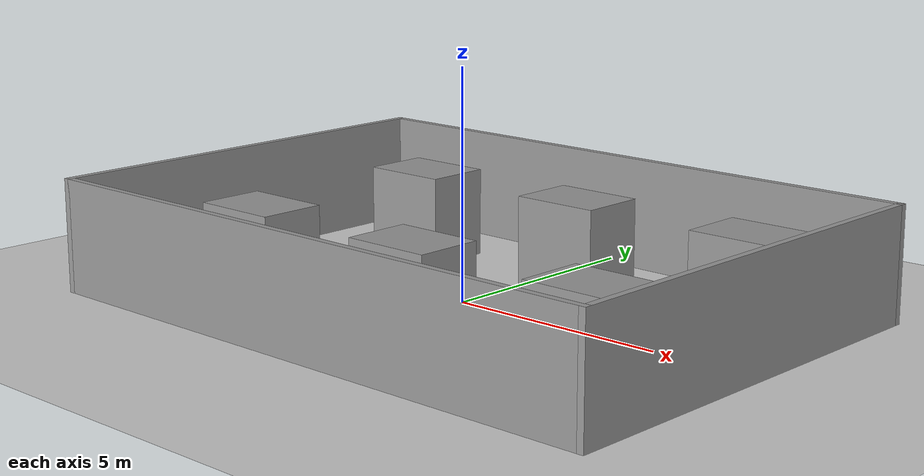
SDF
<sdf version="1.7">
 <world name="default">
  <light name="sun" type="directional">
   <pose>0 0 10 0 -0 0</pose>
   <diffuse>0.8 0.8 0.8 1</diffuse>
   <specular>0.2 0.2 0.2 1</specular>
   <attenuation>
    <range>1000</range>
    <constant>0.9</constant>
    <linear>0.01</linear>
    <quadratic>0.001</quadratic>
   </attenuation>
   <direction>-0.5 0.1 -0.9</direction>
   <spot><inner_angle>0</inner_angle><outer_angle>0</outer_angle><falloff>0</falloff></spot>
  </light>
  <model name="ground_plane">
   <static>1</static>
   <link name="link">
    <collision name="collision">
     <geometry><plane><normal>0 0 1</normal><size>100 100</size></plane></geometry>
     <surface>
      <contact><collide_bitmask>65535</collide_bitmask></contact>
      <friction><ode><mu>100</mu><mu2>50</mu2></ode></friction>
     </surface>
    </collision>
    <visual name="visual">
     <cast_shadows>0</cast_shadows>
     <geometry><plane><normal>0 0 1</normal><size>100 100</size></plane></geometry>
     <material>
      <script><uri>file://media/materials/scripts/gazebo.material</uri><name>Gazebo/Grey</name></script>
     </material>
    </visual>
   </link>
  </model>
  <gravity>0 0 -9.8</gravity>
  <magnetic_field>6e-06 2.3e-05 -4.2e-05</magnetic_field>
  <atmosphere type="adiabatic"/>
  <physics type="ode">
   <max_step_size>0.001</max_step_size>
   <real_time_factor>1</real_time_factor>
   <real_time_update_rate>1000</real_time_update_rate>
  </physics>
  <scene><ambient>0.4 0.4 0.4 1</ambient><background>0.7 0.7 0.7 1</background><shadows>1</shadows></scene>
  <spherical_coordinates>
   <surface_model>EARTH_WGS84</surface_model>
   <latitude_deg>0</latitude_deg>
   <longitude_deg>0</longitude_deg>
   <elevation>0</elevation>
   <heading_deg>0</heading_deg>
  </spherical_coordinates>
  <model name="sqare_area">
   <pose>0.42127 -0.180852 0 0 -0 0</pose>
   <link name="Wall_0">
    <collision name="Wall_0_Collision">
     <geometry><box><size>10 0.15 2.5</size></box></geometry>
     <pose>0 0 1.25 0 -0 0</pose>
    </collision>
    <visual name="Wall_0_Visual">
     <pose>0 0 1.25 0 -0 0</pose>
     <geometry><box><size>10 0.15 2.5</size></box></geometry>
     <material>
      <script><uri>file://media/materials/scripts/gazebo.material</uri><name>Gazebo/Grey</name></script>
      <ambient>1 1 1 1</ambient>
     </material>
     <meta><layer>0</layer></meta>
    </visual>
    <pose>-7.05 -0 0 0 -0 -1.5708</pose>
   </link>
   <link name="Wall_2">
    <collision name="Wall_2_Collision">
     <geometry><box><size>14.25 0.15 2.5</size></box></geometry>
     <pose>0 0 1.25 0 -0 0</pose>
    </collision>
    <visual name="Wall_2_Visual">
     <pose>0 0 1.25 0 -0 0</pose>
     <geometry><box><size>14.25 0.15 2.5</size></box></geometry>
     <material>
      <script><uri>file://media/materials/scripts/gazebo.material</uri><name>Gazebo/Grey</name></script>
      <ambient>1 1 1 1</ambient>
     </material>
     <meta><layer>0</layer></meta>
    </visual>
    <pose>0 -4.925 0 0 -0 0</pose>
   </link>
   <link name="Wall_3">
    <collision name="Wall_3_Collision">
     <geometry><box><size>10 0.15 2.5</size></box></geometry>
     <pose>0 0 1.25 0 -0 0</pose>
    </collision>
    <visual name="Wall_3_Visual">
     <pose>0 0 1.25 0 -0 0</pose>
     <geometry><box><size>10 0.15 2.5</size></box></geometry>
     <material>
      <script><uri>file://media/materials/scripts/gazebo.material</uri><name>Gazebo/Grey</name></script>
      <ambient>1 1 1 1</ambient>
     </material>
     <meta><layer>0</layer></meta>
    </visual>
    <pose>7.05 -0 0 0 -0 1.5708</pose>
   </link>
   <link name="Wall_7">
    <collision name="Wall_7_Collision">
     <geometry><box><size>14.25 0.15 2.5</size></box></geometry>
     <pose>0 0 1.25 0 -0 0</pose>
    </collision>
    <visual name="Wall_7_Visual">
     <pose>0 0 1.25 0 -0 0</pose>
     <geometry><box><size>14.25 0.15 2.5</size></box></geometry>
     <material>
      <script><uri>file://media/materials/scripts/gazebo.material</uri><name>Gazebo/Grey</name></script>
      <ambient>1 1 1 1</ambient>
     </material>
     <meta><layer>0</layer></meta>
    </visual>
    <pose>0 4.925 0 0 -0 0</pose>
   </link>
   <static>1</static>
  </model>
  <model name="sq_in_ma">
   <link name="link_0">
    <inertial>
     <mass>1</mass>
     <inertia>
      <ixx>0.166667</ixx>
      <ixy>0</ixy>
      <ixz>0</ixz>
      <iyy>0.166667</iyy>
      <iyz>0</iyz>
      <izz>0.166667</izz>
     </inertia>
     <pose>-3.5 2.5 1 0 -0 0</pose>
    </inertial>
    <pose>-4.5 2.5 0 0 -0 0</pose>
    <self_collide>1</self_collide>
    <kinematic>1</kinematic>
    <visual name="visual">
     <geometry><box><size>2 1.5 2</size></box></geometry>
     <material>
      <lighting>1</lighting>
      <script><uri>file://media/materials/scripts/gazebo.material</uri><name>Gazebo/Grey</name></script>
      <shader type="pixel"><normal_map>__default__</normal_map></shader>
      <ambient>0.3 0.3 0.3 1</ambient>
      <diffuse>0.7 0.7 0.7 1</diffuse>
      <specular>0.01 0.01 0.01 1</specular>
      <emissive>0 0 0 1</emissive>
     </material>
    </visual>
    <collision name="collision">
     <geometry><box><size>2 1.5 2</size></box></geometry>
     <surface>
      <friction>
       <ode><mu>1</mu><mu2>1</mu2><fdir1>0 0 0</fdir1><slip1>0</slip1><slip2>0</slip2></ode>
       <torsional>
        <coefficient>1</coefficient>
        <patch_radius>0</patch_radius>
        <surface_radius>0</surface_radius>
        <use_patch_radius>1</use_patch_radius>
        <ode><slip>0</slip></ode>
       </torsional>
      </friction>
      <bounce><restitution_coefficient>0</restitution_coefficient><threshold>1e+06</threshold></bounce>
      <contact>
       <collide_without_contact>0</collide_without_contact>
       <collide_without_contact_bitmask>1</collide_without_contact_bitmask>
       <collide_bitmask>1</collide_bitmask>
       <ode>
        <soft_cfm>0</soft_cfm>
        <soft_erp>0.2</soft_erp>
        <kp>1e+13</kp>
        <kd>1</kd>
        <max_vel>0.01</max_vel>
        <min_depth>0</min_depth>
       </ode>
       <bullet>
        <split_impulse>1</split_impulse>
        <split_impulse_penetration_threshold>-0.01</split_impulse_penetration_threshold>
        <soft_cfm>0</soft_cfm>
        <soft_erp>0.2</soft_erp>
        <kp>1e+13</kp>
        <kd>1</kd>
       </bullet>
      </contact>
     </surface>
    </collision>
   </link>
   <link name="link_0_clone">
    <inertial>
     <mass>1</mass>
     <inertia>
      <ixx>0.166667</ixx>
      <ixy>0</ixy>
      <ixz>0</ixz>
      <iyy>0.166667</iyy>
      <iyz>0</iyz>
      <izz>0.166667</izz>
     </inertia>
     <pose>-35 -2.5 1 0 -0 0</pose>
    </inertial>
    <pose>-4.5 -2.5 0 0 -0 0</pose>
    <self_collide>1</self_collide>
    <kinematic>1</kinematic>
    <visual name="visual">
     <geometry><box><size>2 1.5 2</size></box></geometry>
     <material>
      <lighting>1</lighting>
      <script><uri>file://media/materials/scripts/gazebo.material</uri><name>Gazebo/Grey</name></script>
      <shader type="pixel"><normal_map>__default__</normal_map></shader>
      <ambient>0.3 0.3 0.3 1</ambient>
      <diffuse>0.7 0.7 0.7 1</diffuse>
      <specular>0.01 0.01 0.01 1</specular>
      <emissive>0 0 0 1</emissive>
     </material>
    </visual>
    <collision name="collision">
     <geometry><box><size>2 1.5 2</size></box></geometry>
     <surface>
      <friction>
       <ode><mu>1</mu><mu2>1</mu2><fdir1>0 0 0</fdir1><slip1>0</slip1><slip2>0</slip2></ode>
       <torsional>
        <coefficient>1</coefficient>
        <patch_radius>0</patch_radius>
        <surface_radius>0</surface_radius>
        <use_patch_radius>1</use_patch_radius>
        <ode><slip>0</slip></ode>
       </torsional>
      </friction>
      <bounce><restitution_coefficient>0</restitution_coefficient><threshold>1e+06</threshold></bounce>
      <contact>
       <collide_without_contact>0</collide_without_contact>
       <collide_without_contact_bitmask>1</collide_without_contact_bitmask>
       <collide_bitmask>1</collide_bitmask>
       <ode>
        <soft_cfm>0</soft_cfm>
        <soft_erp>0.2</soft_erp>
        <kp>1e+13</kp>
        <kd>1</kd>
        <max_vel>0.01</max_vel>
        <min_depth>0</min_depth>
       </ode>
       <bullet>
        <split_impulse>1</split_impulse>
        <split_impulse_penetration_threshold>-0.01</split_impulse_penetration_threshold>
        <soft_cfm>0</soft_cfm>
        <soft_erp>0.2</soft_erp>
        <kp>1e+13</kp>
        <kd>1</kd>
       </bullet>
      </contact>
     </surface>
    </collision>
   </link>
   <link name="link_0_clone_0">
    <inertial>
     <mass>1</mass>
     <inertia>
      <ixx>0.166667</ixx>
      <ixy>0</ixy>
      <ixz>0</ixz>
      <iyy>0.166667</iyy>
      <iyz>0</iyz>
      <izz>0.166667</izz>
     </inertia>
     <pose>1 2.5 1 0 -0 0</pose>
    </inertial>
    <pose>0 2.5 -1e-06 0 -0 0</pose>
    <self_collide>1</self_collide>
    <kinematic>1</kinematic>
    <visual name="visual">
     <geometry><box><size>2 1.5 2</size></box></geometry>
     <material>
      <lighting>1</lighting>
      <script><uri>file://media/materials/scripts/gazebo.material</uri><name>Gazebo/Grey</name></script>
      <shader type="pixel"><normal_map>__default__</normal_map></shader>
      <ambient>0.3 0.3 0.3 1</ambient>
      <diffuse>0.7 0.7 0.7 1</diffuse>
      <specular>0.01 0.01 0.01 1</specular>
      <emissive>0 0 0 1</emissive>
     </material>
    </visual>
    <collision name="collision">
     <geometry><box><size>2 1.5 2</size></box></geometry>
     <surface>
      <friction>
       <ode><mu>1</mu><mu2>1</mu2><fdir1>0 0 0</fdir1><slip1>0</slip1><slip2>0</slip2></ode>
       <torsional>
        <coefficient>1</coefficient>
        <patch_radius>0</patch_radius>
        <surface_radius>0</surface_radius>
        <use_patch_radius>1</use_patch_radius>
        <ode><slip>0</slip></ode>
       </torsional>
      </friction>
      <bounce><restitution_coefficient>0</restitution_coefficient><threshold>1e+06</threshold></bounce>
      <contact>
       <collide_without_contact>0</collide_without_contact>
       <collide_without_contact_bitmask>1</collide_without_contact_bitmask>
       <collide_bitmask>1</collide_bitmask>
       <ode>
        <soft_cfm>0</soft_cfm>
        <soft_erp>0.2</soft_erp>
        <kp>1e+13</kp>
        <kd>1</kd>
        <max_vel>0.01</max_vel>
        <min_depth>0</min_depth>
       </ode>
       <bullet>
        <split_impulse>1</split_impulse>
        <split_impulse_penetration_threshold>-0.01</split_impulse_penetration_threshold>
        <soft_cfm>0</soft_cfm>
        <soft_erp>0.2</soft_erp>
        <kp>1e+13</kp>
        <kd>1</kd>
       </bullet>
      </contact>
     </surface>
    </collision>
   </link>
   <link name="link_0_clone_1">
    <inertial>
     <mass>1</mass>
     <inertia>
      <ixx>0.166667</ixx>
      <ixy>0</ixy>
      <ixz>0</ixz>
      <iyy>0.166667</iyy>
      <iyz>0</iyz>
      <izz>0.166667</izz>
     </inertia>
     <pose>5.5 2.5 1 0 -0 0</pose>
    </inertial>
    <pose>4.5 2.5 0 0 -0 0</pose>
    <self_collide>1</self_collide>
    <kinematic>1</kinematic>
    <visual name="visual">
     <geometry><box><size>2 1.5 2</size></box></geometry>
     <material>
      <lighting>1</lighting>
      <script><uri>file://media/materials/scripts/gazebo.material</uri><name>Gazebo/Grey</name></script>
      <shader type="pixel"><normal_map>__default__</normal_map></shader>
      <ambient>0.3 0.3 0.3 1</ambient>
      <diffuse>0.7 0.7 0.7 1</diffuse>
      <specular>0.01 0.01 0.01 1</specular>
      <emissive>0 0 0 1</emissive>
     </material>
    </visual>
    <collision name="collision">
     <geometry><box><size>2 1.5 2</size></box></geometry>
     <surface>
      <friction>
       <ode><mu>1</mu><mu2>1</mu2><fdir1>0 0 0</fdir1><slip1>0</slip1><slip2>0</slip2></ode>
       <torsional>
        <coefficient>1</coefficient>
        <patch_radius>0</patch_radius>
        <surface_radius>0</surface_radius>
        <use_patch_radius>1</use_patch_radius>
        <ode><slip>0</slip></ode>
       </torsional>
      </friction>
      <bounce><restitution_coefficient>0</restitution_coefficient><threshold>1e+06</threshold></bounce>
      <contact>
       <collide_without_contact>0</collide_without_contact>
       <collide_without_contact_bitmask>1</collide_without_contact_bitmask>
       <collide_bitmask>1</collide_bitmask>
       <ode>
        <soft_cfm>0</soft_cfm>
        <soft_erp>0.2</soft_erp>
        <kp>1e+13</kp>
        <kd>1</kd>
        <max_vel>0.01</max_vel>
        <min_depth>0</min_depth>
       </ode>
       <bullet>
        <split_impulse>1</split_impulse>
        <split_impulse_penetration_threshold>-0.01</split_impulse_penetration_threshold>
        <soft_cfm>0</soft_cfm>
        <soft_erp>0.2</soft_erp>
        <kp>1e+13</kp>
        <kd>1</kd>
       </bullet>
      </contact>
     </surface>
    </collision>
   </link>
   <link name="link_0_clone_2">
    <inertial>
     <mass>1</mass>
     <inertia>
      <ixx>0.166667</ixx>
      <ixy>0</ixy>
      <ixz>0</ixz>
      <iyy>0.166667</iyy>
      <iyz>0</iyz>
      <izz>0.166667</izz>
     </inertia>
     <pose>1 -2.5 1 0 -0 0</pose>
    </inertial>
    <pose>0 -2.5 2e-06 0 -0 0</pose>
    <self_collide>1</self_collide>
    <kinematic>1</kinematic>
    <visual name="visual">
     <geometry><box><size>2 1.5 2</size></box></geometry>
     <material>
      <lighting>1</lighting>
      <script><uri>file://media/materials/scripts/gazebo.material</uri><name>Gazebo/Grey</name></script>
      <shader type="pixel"><normal_map>__default__</normal_map></shader>
      <ambient>0.3 0.3 0.3 1</ambient>
      <diffuse>0.7 0.7 0.7 1</diffuse>
      <specular>0.01 0.01 0.01 1</specular>
      <emissive>0 0 0 1</emissive>
     </material>
    </visual>
    <collision name="collision">
     <geometry><box><size>2 1.5 2</size></box></geometry>
     <surface>
      <friction>
       <ode><mu>1</mu><mu2>1</mu2><fdir1>0 0 0</fdir1><slip1>0</slip1><slip2>0</slip2></ode>
       <torsional>
        <coefficient>1</coefficient>
        <patch_radius>0</patch_radius>
        <surface_radius>0</surface_radius>
        <use_patch_radius>1</use_patch_radius>
        <ode><slip>0</slip></ode>
       </torsional>
      </friction>
      <bounce><restitution_coefficient>0</restitution_coefficient><threshold>1e+06</threshold></bounce>
      <contact>
       <collide_without_contact>0</collide_without_contact>
       <collide_without_contact_bitmask>1</collide_without_contact_bitmask>
       <collide_bitmask>1</collide_bitmask>
       <ode>
        <soft_cfm>0</soft_cfm>
        <soft_erp>0.2</soft_erp>
        <kp>1e+13</kp>
        <kd>1</kd>
        <max_vel>0.01</max_vel>
        <min_depth>0</min_depth>
       </ode>
       <bullet>
        <split_impulse>1</split_impulse>
        <split_impulse_penetration_threshold>-0.01</split_impulse_penetration_threshold>
        <soft_cfm>0</soft_cfm>
        <soft_erp>0.2</soft_erp>
        <kp>1e+13</kp>
        <kd>1</kd>
       </bullet>
      </contact>
     </surface>
    </collision>
   </link>
   <link name="link_0_clone_3">
    <inertial>
     <mass>1</mass>
     <inertia>
      <ixx>0.166667</ixx>
      <ixy>0</ixy>
      <ixz>0</ixz>
      <iyy>0.166667</iyy>
      <iyz>0</iyz>
      <izz>0.166667</izz>
     </inertia>
     <pose>5.5 -2.5 1 0 -0 0</pose>
    </inertial>
    <pose>4.5 -2.5 0 0 -0 0</pose>
    <self_collide>1</self_collide>
    <kinematic>1</kinematic>
    <visual name="visual">
     <geometry><box><size>2 1.5 2</size></box></geometry>
     <material>
      <lighting>1</lighting>
      <script><uri>file://media/materials/scripts/gazebo.material</uri><name>Gazebo/Grey</name></script>
      <shader type="pixel"><normal_map>__default__</normal_map></shader>
      <ambient>0.3 0.3 0.3 1</ambient>
      <diffuse>0.7 0.7 0.7 1</diffuse>
      <specular>0.01 0.01 0.01 1</specular>
      <emissive>0 0 0 1</emissive>
     </material>
    </visual>
    <collision name="collision">
     <geometry><box><size>2 1.5 2</size></box></geometry>
     <surface>
      <friction>
       <ode><mu>1</mu><mu2>1</mu2><fdir1>0 0 0</fdir1><slip1>0</slip1><slip2>0</slip2></ode>
       <torsional>
        <coefficient>1</coefficient>
        <patch_radius>0</patch_radius>
        <surface_radius>0</surface_radius>
        <use_patch_radius>1</use_patch_radius>
        <ode><slip>0</slip></ode>
       </torsional>
      </friction>
      <bounce><restitution_coefficient>0</restitution_coefficient><threshold>1e+06</threshold></bounce>
      <contact>
       <collide_without_contact>0</collide_without_contact>
       <collide_without_contact_bitmask>1</collide_without_contact_bitmask>
       <collide_bitmask>1</collide_bitmask>
       <ode>
        <soft_cfm>0</soft_cfm>
        <soft_erp>0.2</soft_erp>
        <kp>1e+13</kp>
        <kd>1</kd>
        <max_vel>0.01</max_vel>
        <min_depth>0</min_depth>
       </ode>
       <bullet>
        <split_impulse>1</split_impulse>
        <split_impulse_penetration_threshold>-0.01</split_impulse_penetration_threshold>
        <soft_cfm>0</soft_cfm>
        <soft_erp>0.2</soft_erp>
        <kp>1e+13</kp>
        <kd>1</kd>
       </bullet>
      </contact>
     </surface>
    </collision>
   </link>
   <static>0</static>
   <pose>1 0 1 0 -0 0</pose>
  </model>
 </world>
</sdf>
